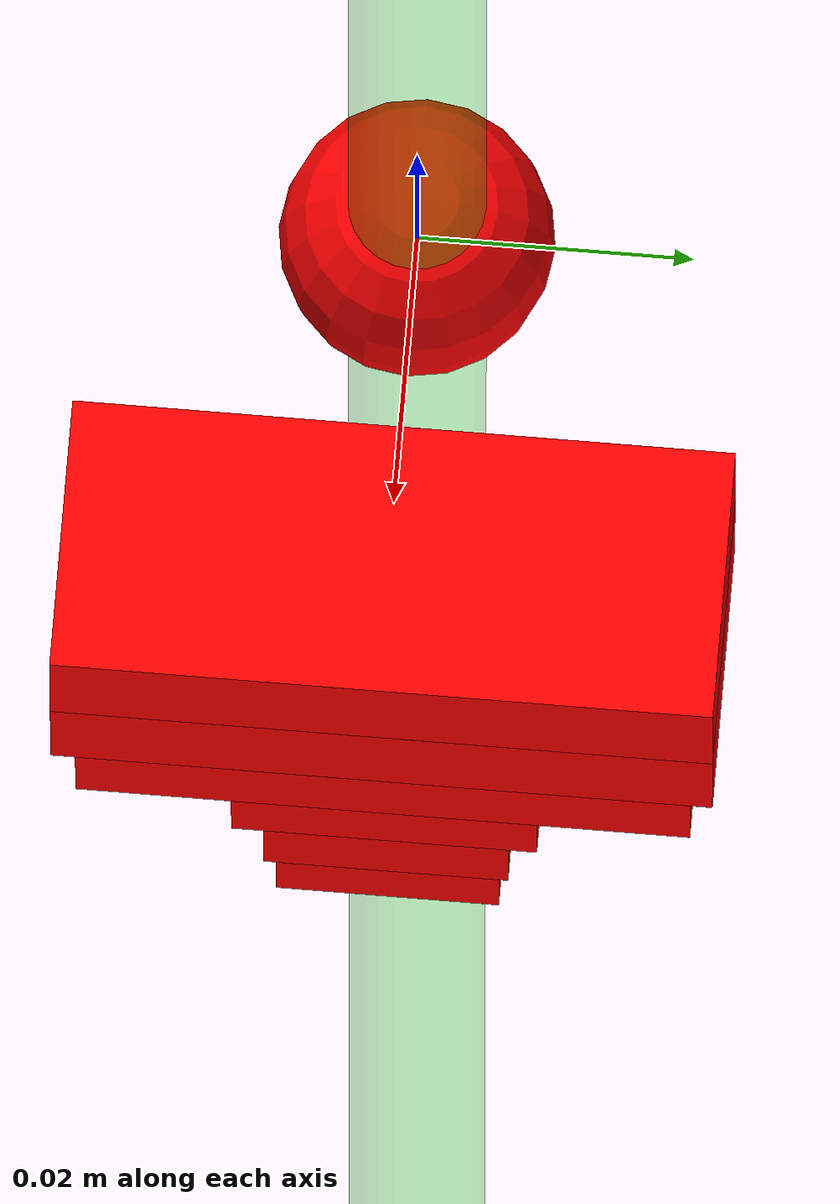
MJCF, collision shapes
<mujoco model="so101_gripper">
    <asset>
        <!-- mesh path resolved relative to this file's directory by robosuite -->
        <mesh name="moving_jaw_so101_v1" file="../robots/SOARM101/SO101/assets/moving_jaw_so101_v1.stl"/>
        <mesh name="wrist_camera_mount" file="meshes/so101/wrist_camera_2.stl" scale="0.001 0.001 0.001"/>
        <material name="moving_jaw_so101_v1_material" rgba="1 0.82 0.12 1"/>
        <material name="wrist_camera_mount_white" rgba="1 1 1 1"/>
    </asset>
    <worldbody>
        <body name="gripper_base" pos="0 0 0">
            <site name="ft_frame" pos="0 0 0" size="0.01 0.01 0.01" rgba="1 0 0 1" type="sphere" group="1"/>
            <inertial pos="0 0 0" mass="1e-9" diaginertia="1e-9 1e-9 1e-9"/>
            <!-- Moving jaw — same offset it had relative to the wrist_roll body in the arm XML -->
            <body name="moving_jaw" pos="0.0202 0.0188 -0.0234" quat="0.707107 0.707107 -1.85362e-08 1.85362e-08">
                <joint axis="0 0 1" name="gripper" type="hinge"
                       range="-0.17453297762778586 1.7453291995659765"
                       damping="0.60" frictionloss="0.052" armature="0.028"/>
                <inertial pos="-0.00157495 -0.0300244 0.0192755" mass="0.012"
                          fullinertia="6.61427e-06 1.89032e-06 5.28738e-06 -3.19807e-07 -5.90717e-09 -1.09945e-07"/>
                <geom name="moving_jaw_vis" type="mesh" contype="0" conaffinity="0" group="1"
                      pos="-5.55112e-17 -5.55112e-17 0.0189"
                      quat="1 -0 3.00524e-16 -2.00834e-17"
                      mesh="moving_jaw_so101_v1" material="moving_jaw_so101_v1_material"/>

                <!-- Convex primitive chain fitted to STL cross-sections. A single mesh
                     collision becomes one convex hull and fills the jaw's concavities. -->

                <geom name="moving_jaw_tip_col_0" type="box" pos="-0.00890 -0.08000 0.01890" size="0.00310 0.00215 0.00390" group="0" friction="0.4 0.02 0.001" solimp="0.995 0.999 0.001" solref="0.005 1" rgba="1 0 0 0.65"/>
                <geom name="moving_jaw_tip_col_1" type="box" pos="-0.00827 -0.07601 0.01885" size="0.00373 0.00215 0.00510" group="0" friction="0.4 0.02 0.001" solimp="0.995 0.999 0.001" solref="0.005 1" rgba="1 0 0 0.65"/>
                <geom name="moving_jaw_tip_col_2" type="box" pos="-0.00698 -0.07200 0.01880" size="0.00502 0.00215 0.00575" group="0" friction="0.4 0.02 0.001" solimp="0.995 0.999 0.001" solref="0.005 1" rgba="1 0 0 0.65"/>
                <geom name="moving_jaw_tip_col_3" type="box" pos="-0.00546 -0.06812 0.01890" size="0.00454 0.00205 0.00630" group="0" friction="0.4 0.02 0.001" solimp="0.995 0.999 0.001" solref="0.005 1" rgba="1 0 0 0.65"/>
                <geom name="moving_jaw_tip_col_4" type="box" pos="-0.00420 -0.06385 0.01889" size="0.00580 0.00205 0.00682" group="0" friction="0.4 0.02 0.001" solimp="0.995 0.999 0.001" solref="0.005 1" rgba="1 0 0 0.65"/>
                <geom name="moving_jaw_tip_col_5" type="box" pos="-0.00324 -0.06000 0.01890" size="0.00676 0.00215 0.00714" group="0" friction="0.4 0.02 0.001" solimp="0.995 0.999 0.001" solref="0.005 1" rgba="1 0 0 0.65"/>
                <geom name="moving_jaw_col_2" type="box" pos="-0.00190 -0.05350 0.01890" size="0.00640 0.00550 0.00810" group="0" friction="0.4 0.02 0.001" solimp="0.995 0.999 0.001" solref="0.005 1" rgba="1 0 0 0.65"/>
                <geom name="moving_jaw_col_3" type="box" pos="-0.00110 -0.04250 0.01890" size="0.00720 0.00490 0.00890" group="0" friction="0.4 0.02 0.001" solimp="0.995 0.999 0.001" solref="0.005 1" rgba="1 0 0 0.65"/>
                <geom name="moving_jaw_col_4" type="box" pos="-0.00040 -0.02985 0.01890" size="0.00790 0.00535 0.01110" group="0" friction="0.4 0.02 0.001" solimp="0.995 0.999 0.001" solref="0.005 1" rgba="1 0 0 0.65"/>
                <geom name="moving_jaw_col_5" type="box" pos="-0.00065 -0.01875 0.01890" size="0.00935 0.00575 0.02230" group="0" friction="0.4 0.02 0.001" solimp="0.995 0.999 0.001" solref="0.005 1" rgba="1 0 0 0.65"/>
                <geom name="moving_jaw_col_6" type="box" pos="-0.00010 -0.00725 0.01890" size="0.00990 0.00575 0.02400" group="0" friction="0.4 0.02 0.001" solimp="0.995 0.999 0.001" solref="0.005 1" rgba="1 0 0 0.65"/>
                <geom name="moving_jaw_col_7" type="box" pos="0.00000 0.00425 0.01890" size="0.01000 0.00575 0.02400" group="0" friction="0.4 0.02 0.001" solimp="0.995 0.999 0.001" solref="0.005 1" rgba="1 0 0 0.65"/>
            </body>
            <!-- EEF sites used by robosuite's gripper interface -->
            <body name="eef" pos="0 0 0" quat="0.707105 0 0 -0.707105">
                <site name="so101_grip_site"          pos="0 0 0"   size="0.01 0.01 0.01" rgba="1 0 0 0.5"  type="sphere"   group="1"/>
                <site name="so101_ee"                 pos="0 0 0"   size="0.01 0.01 0.01" rgba="1 0 0 0.5"  type="sphere"   group="1"/>
                <site name="so101_ee_x"               pos="0.1 0 0" size="0.005 .1"       quat="0.707105 0 0.707108 0"  rgba="1 0 0 0" type="cylinder" group="1"/>
                <site name="so101_ee_y"               pos="0 0.1 0" size="0.005 .1"       quat="0.707105 0.707108 0 0"  rgba="0 1 0 0" type="cylinder" group="1"/>
                <site name="so101_ee_z"               pos="0 0 0.1" size="0.005 .1"       quat="1 0 0 0"                rgba="0 0 1 0" type="cylinder" group="1"/>
                <site name="so101_grip_site_cylinder" pos="0 0 0"   size="0.005 10"       rgba="0 1 0 0.3" type="cylinder" group="1"/>
                <!-- Wrist camera mock-up: collision-enabled white bracket plus a small forward-facing camera.
                     Mounted to eef so it follows the gripper without coupling to the moving jaw. -->
            </body>
        </body>
    </worldbody>
    <actuator>
        <!-- position actuator: ctrl = target joint angle → GRIP controller maps [-1,1] proportionally
             to this ctrlrange, giving continuous jaw control instead of bang-bang torque. -->
        <position name="gripper" joint="gripper" kp="998.22" kv="2.731"
                  ctrllimited="true"  ctrlrange="-0.17453297762778586 1.7453291995659765"
                  forcelimited="true" forcerange="-1.20 1.20"/>
    </actuator>
    <sensor>
        <force  name="force_ee"  site="ft_frame"/>
        <torque name="torque_ee" site="ft_frame"/>
    </sensor>
  <contact>
    <exclude body1="moving_jaw" body2="shoulder"/>
  </contact>
</mujoco>
